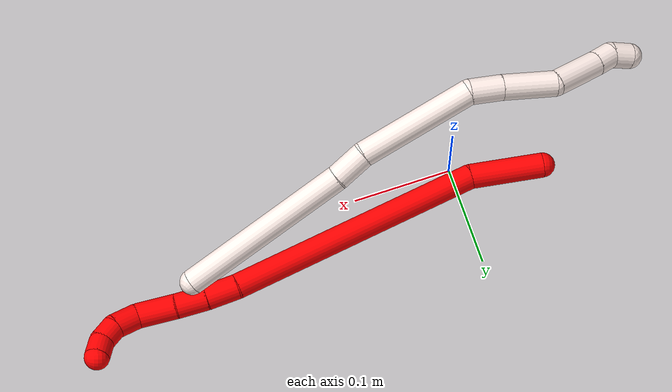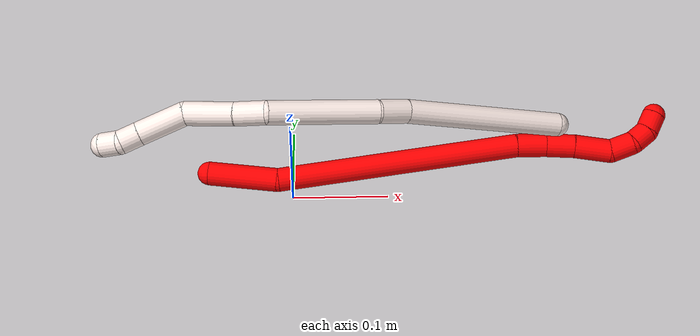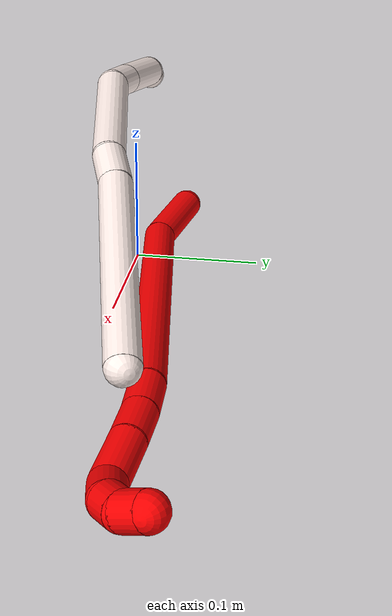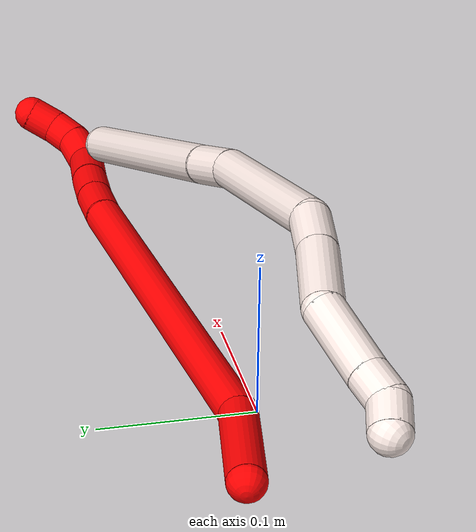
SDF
<sdf version="1.7">
 <world name="default">
  <model name="photoneo_s_sensor">
   <static>1</static>
   <pose>0 0 2 1.57079 1.57079 3.14159</pose>
   <link name="link">
    <inertial><mass>0.1</mass></inertial>
    <sensor name="sensor" type="depth">
     <update_rate>30</update_rate>
     <camera>
      <horizontal_fov>1.22</horizontal_fov>
      <image><width>1920</width><height>1200</height><format>B8G8R8</format></image>
      <clip><near>0.1</near><far>4</far></clip>
      <depth_camera><output>points</output></depth_camera>
     </camera>
     <plugin name="camera_plugin" filename="libgazebo_ros_depth_camera.so">
      <baseline>0.2</baseline>
      <alwaysOn>1</alwaysOn>
      <updateRate>0.0</updateRate>
      <cameraName>camera_ir</cameraName>
      <imageTopicName>/camera/color/image_raw</imageTopicName>
      <cameraInfoTopicName>/camera/color/camera_info</cameraInfoTopicName>
      <depthImageTopicName>/camera/depth/image_raw</depthImageTopicName>
      <depthImageCameraInfoTopicName>/camera/depth/camera_info</depthImageCameraInfoTopicName>
      <pointCloudTopicName>/camera/depth/points</pointCloudTopicName>
      <frameName>fr_optical</frameName>
      <pointCloudCutoff>0.1</pointCloudCutoff>
      <pointCloudCutoffMax>2.0</pointCloudCutoffMax>
      <distortionK1>0</distortionK1>
      <distortionK2>0</distortionK2>
      <distortionK3>0</distortionK3>
      <distortionT1>0</distortionT1>
      <distortionT2>0</distortionT2>
      <CxPrime>0</CxPrime>
      <Cx>0</Cx>
      <Cy>0</Cy>
      <focalLength>0</focalLength>
      <hackBaseline>0</hackBaseline>
     </plugin>
    </sensor>
   </link>
  </model>
  <model name="bin">
   <static>1</static>
   <link name="bottom">
    <collision name="collision-bottom">
     <pose>0 0 -0.01 0 -0 0</pose>
     <geometry><box><size>0.8 0.6 0.02</size></box></geometry>
     <surface>
      <friction><ode><mu>100</mu><mu2>100</mu2></ode></friction>
      <contact><collide_bitmask>65535</collide_bitmask></contact>
     </surface>
    </collision>
   </link>
   <link name="west_wall">
    <collision name="collision-west_wall">
     <pose>-0.41 0 0.1 0 -0 0</pose>
     <geometry><box><size>0.02 0.6 0.2</size></box></geometry>
     <surface>
      <friction><ode><mu>100</mu><mu2>100</mu2></ode></friction>
      <contact><collide_bitmask>65535</collide_bitmask></contact>
     </surface>
    </collision>
   </link>
   <link name="east_wall">
    <collision name="collision-east_wall">
     <pose>0.41 0 0.1 0 -0 0</pose>
     <geometry><box><size>0.02 0.6 0.2</size></box></geometry>
     <surface>
      <friction><ode><mu>100</mu><mu2>100</mu2></ode></friction>
      <contact><collide_bitmask>65535</collide_bitmask></contact>
     </surface>
    </collision>
   </link>
   <link name="south_wall">
    <collision name="collision-south_wall">
     <pose>0 -0.31 0.1 0 -0 0</pose>
     <geometry><box><size>0.8 0.02 0.2</size></box></geometry>
     <surface>
      <friction><ode><mu>100</mu><mu2>100</mu2></ode></friction>
      <contact><collide_bitmask>65535</collide_bitmask></contact>
     </surface>
    </collision>
   </link>
   <link name="north_wall">
    <collision name="collision-north_wall">
     <pose>0 0.31 0.1 0 -0 0</pose>
     <geometry><box><size>0.8 0.02 0.2</size></box></geometry>
     <surface>
      <friction><ode><mu>100</mu><mu2>100</mu2></ode></friction>
      <contact><collide_bitmask>65535</collide_bitmask></contact>
     </surface>
    </collision>
   </link>
  </model>
  <model name="2">
   <static>0</static>
   <link name="2">
    <collision name="collision-cylinder-e_1_1_4">
     <pose>0.006479 -0.003696 0.036149 0.101897 0.176455 0.009021</pose>
     <geometry><cylinder><radius>0.0125</radius><length>0.073822</length></cylinder></geometry>
     <surface>
      <friction><ode><mu>1.16</mu><mu2>1.16</mu2><slip1>0</slip1><slip2>0</slip2></ode></friction>
      <contact><ode><kp>1e+06</kp><kd>1</kd><max_vel>0</max_vel><min_depth>0.001</min_depth></ode></contact>
     </surface>
    </collision>
    <visual name="visual-cylinder-e_1_1_4">
     <pose>0.006479 -0.003696 0.036149 0.101897 0.176455 0.009021</pose>
     <geometry><cylinder><radius>0.0125</radius><length>0.073822</length></cylinder></geometry>
     <material><ambient>1 0 0 1</ambient></material>
    </visual>
    <collision name="collision-cylinder-e_2_4_5">
     <pose>0.058811 0.011089 0.191696 -0.153572 0.362715 -0.028215</pose>
     <geometry><cylinder><radius>0.0125</radius><length>0.258455</length></cylinder></geometry>
     <surface>
      <friction><ode><mu>1.16</mu><mu2>1.16</mu2><slip1>0</slip1><slip2>0</slip2></ode></friction>
      <contact><ode><kp>1e+06</kp><kd>1</kd><max_vel>0</max_vel><min_depth>0.001</min_depth></ode></contact>
     </surface>
    </collision>
    <visual name="visual-cylinder-e_2_4_5">
     <pose>0.058811 0.011089 0.191696 -0.153572 0.362715 -0.028215</pose>
     <geometry><cylinder><radius>0.0125</radius><length>0.258455</length></cylinder></geometry>
     <material><ambient>1 0 0 1</ambient></material>
    </visual>
    <collision name="collision-cylinder-e_3_5_6">
     <pose>0.109859 0.029773 0.326049 -0.013501 0.334408 -0.002279</pose>
     <geometry><cylinder><radius>0.0125</radius><length>0.031666</length></cylinder></geometry>
     <surface>
      <friction><ode><mu>1.16</mu><mu2>1.16</mu2><slip1>0</slip1><slip2>0</slip2></ode></friction>
      <contact><ode><kp>1e+06</kp><kd>1</kd><max_vel>0</max_vel><min_depth>0.001</min_depth></ode></contact>
     </surface>
    </collision>
    <visual name="visual-cylinder-e_3_5_6">
     <pose>0.109859 0.029773 0.326049 -0.013501 0.334408 -0.002279</pose>
     <geometry><cylinder><radius>0.0125</radius><length>0.031666</length></cylinder></geometry>
     <material><ambient>1 0 0 1</ambient></material>
    </visual>
    <collision name="collision-cylinder-e_4_6_7">
     <pose>0.11927 0.029345 0.355674 0.042872 0.279481 0.006031</pose>
     <geometry><cylinder><radius>0.0125</radius><length>0.030554</length></cylinder></geometry>
     <surface>
      <friction><ode><mu>1.16</mu><mu2>1.16</mu2><slip1>0</slip1><slip2>0</slip2></ode></friction>
      <contact><ode><kp>1e+06</kp><kd>1</kd><max_vel>0</max_vel><min_depth>0.001</min_depth></ode></contact>
     </surface>
    </collision>
    <visual name="visual-cylinder-e_4_6_7">
     <pose>0.11927 0.029345 0.355674 0.042872 0.279481 0.006031</pose>
     <geometry><cylinder><radius>0.0125</radius><length>0.030554</length></cylinder></geometry>
     <material><ambient>1 0 0 1</ambient></material>
    </visual>
    <collision name="collision-cylinder-e_5_7_8">
     <pose>0.129103 0.026072 0.389046 0.140449 0.289185 0.020483</pose>
     <geometry><cylinder><radius>0.0125</radius><length>0.039412</length></cylinder></geometry>
     <surface>
      <friction><ode><mu>1.16</mu><mu2>1.16</mu2><slip1>0</slip1><slip2>0</slip2></ode></friction>
      <contact><ode><kp>1e+06</kp><kd>1</kd><max_vel>0</max_vel><min_depth>0.001</min_depth></ode></contact>
     </surface>
    </collision>
    <visual name="visual-cylinder-e_5_7_8">
     <pose>0.129103 0.026072 0.389046 0.140449 0.289185 0.020483</pose>
     <geometry><cylinder><radius>0.0125</radius><length>0.039412</length></cylinder></geometry>
     <material><ambient>1 0 0 1</ambient></material>
    </visual>
    <collision name="collision-cylinder-e_6_8_9">
     <pose>0.137598 0.027925 0.419416 -0.367852 0.225977 -0.042212</pose>
     <geometry><cylinder><radius>0.0125</radius><length>0.025663</length></cylinder></geometry>
     <surface>
      <friction><ode><mu>1.16</mu><mu2>1.16</mu2><slip1>0</slip1><slip2>0</slip2></ode></friction>
      <contact><ode><kp>1e+06</kp><kd>1</kd><max_vel>0</max_vel><min_depth>0.001</min_depth></ode></contact>
     </surface>
    </collision>
    <visual name="visual-cylinder-e_6_8_9">
     <pose>0.137598 0.027925 0.419416 -0.367852 0.225977 -0.042212</pose>
     <geometry><cylinder><radius>0.0125</radius><length>0.025663</length></cylinder></geometry>
     <material><ambient>1 0 0 1</ambient></material>
    </visual>
    <collision name="collision-cylinder-e_7_9_10">
     <pose>0.1448 0.038494 0.437759 -0.738174 0.447193 -0.17547</pose>
     <geometry><cylinder><radius>0.0125</radius><length>0.020014</length></cylinder></geometry>
     <surface>
      <friction><ode><mu>1.16</mu><mu2>1.16</mu2><slip1>0</slip1><slip2>0</slip2></ode></friction>
      <contact><ode><kp>1e+06</kp><kd>1</kd><max_vel>0</max_vel><min_depth>0.001</min_depth></ode></contact>
     </surface>
    </collision>
    <visual name="visual-cylinder-e_7_9_10">
     <pose>0.1448 0.038494 0.437759 -0.738174 0.447193 -0.17547</pose>
     <geometry><cylinder><radius>0.0125</radius><length>0.020014</length></cylinder></geometry>
     <material><ambient>1 0 0 1</ambient></material>
    </visual>
    <collision name="collision-cylinder-e_8_10_2">
     <pose>0.152967 0.05344 0.447704 -1.21773 0.38562 -0.270586</pose>
     <geometry><cylinder><radius>0.0125</radius><length>0.020414</length></cylinder></geometry>
     <surface>
      <friction><ode><mu>1.16</mu><mu2>1.16</mu2><slip1>0</slip1><slip2>0</slip2></ode></friction>
      <contact><ode><kp>1e+06</kp><kd>1</kd><max_vel>0</max_vel><min_depth>0.001</min_depth></ode></contact>
     </surface>
    </collision>
    <visual name="visual-cylinder-e_8_10_2">
     <pose>0.152967 0.05344 0.447704 -1.21773 0.38562 -0.270586</pose>
     <geometry><cylinder><radius>0.0125</radius><length>0.020414</length></cylinder></geometry>
     <material><ambient>1 0 0 1</ambient></material>
    </visual>
    <collision name="collision-sphere-2">
     <pose>0.156806 0.062314 0.450974 0 -0 0</pose>
     <geometry><sphere><radius>0.0125</radius></sphere></geometry>
     <surface>
      <friction><ode><mu>1.16</mu><mu2>1.16</mu2><slip1>0</slip1><slip2>0</slip2></ode></friction>
      <contact><ode><kp>1e+06</kp><kd>1</kd><max_vel>0</max_vel><min_depth>0.001</min_depth></ode></contact>
     </surface>
    </collision>
    <visual name="visual-sphere-2">
     <pose>0.156806 0.062314 0.450974 0 -0 0</pose>
     <geometry><sphere><radius>0.0125</radius></sphere></geometry>
     <material><ambient>1 0 0 1</ambient></material>
    </visual>
    <collision name="collision-sphere-10">
     <pose>0.149128 0.044566 0.444434 0 -0 0</pose>
     <geometry><sphere><radius>0.0125</radius></sphere></geometry>
     <surface>
      <friction><ode><mu>1.16</mu><mu2>1.16</mu2><slip1>0</slip1><slip2>0</slip2></ode></friction>
      <contact><ode><kp>1e+06</kp><kd>1</kd><max_vel>0</max_vel><min_depth>0.001</min_depth></ode></contact>
     </surface>
    </collision>
    <visual name="visual-sphere-10">
     <pose>0.149128 0.044566 0.444434 0 -0 0</pose>
     <geometry><sphere><radius>0.0125</radius></sphere></geometry>
     <material><ambient>1 0 0 1</ambient></material>
    </visual>
    <collision name="collision-sphere-9">
     <pose>0.140473 0.032422 0.431085 0 -0 0</pose>
     <geometry><sphere><radius>0.0125</radius></sphere></geometry>
     <surface>
      <friction><ode><mu>1.16</mu><mu2>1.16</mu2><slip1>0</slip1><slip2>0</slip2></ode></friction>
      <contact><ode><kp>1e+06</kp><kd>1</kd><max_vel>0</max_vel><min_depth>0.001</min_depth></ode></contact>
     </surface>
    </collision>
    <visual name="visual-sphere-9">
     <pose>0.140473 0.032422 0.431085 0 -0 0</pose>
     <geometry><sphere><radius>0.0125</radius></sphere></geometry>
     <material><ambient>1 0 0 1</ambient></material>
    </visual>
    <collision name="collision-sphere-4">
     <pose>0.012959 -0.007393 0.072299 0 -0 0</pose>
     <geometry><sphere><radius>0.0125</radius></sphere></geometry>
     <surface>
      <friction><ode><mu>1.16</mu><mu2>1.16</mu2><slip1>0</slip1><slip2>0</slip2></ode></friction>
      <contact><ode><kp>1e+06</kp><kd>1</kd><max_vel>0</max_vel><min_depth>0.001</min_depth></ode></contact>
     </surface>
    </collision>
    <visual name="visual-sphere-4">
     <pose>0.012959 -0.007393 0.072299 0 -0 0</pose>
     <geometry><sphere><radius>0.0125</radius></sphere></geometry>
     <material><ambient>1 0 0 1</ambient></material>
    </visual>
    <collision name="collision-sphere-1">
     <geometry><sphere><radius>0.0125</radius></sphere></geometry>
     <surface>
      <friction><ode><mu>1.16</mu><mu2>1.16</mu2><slip1>0</slip1><slip2>0</slip2></ode></friction>
      <contact><ode><kp>1e+06</kp><kd>1</kd><max_vel>0</max_vel><min_depth>0.001</min_depth></ode></contact>
     </surface>
    </collision>
    <visual name="visual-sphere-1">
     <geometry><sphere><radius>0.0125</radius></sphere></geometry>
     <material><ambient>1 0 0 1</ambient></material>
    </visual>
    <collision name="collision-sphere-8">
     <pose>0.134723 0.023428 0.407748 0 -0 0</pose>
     <geometry><sphere><radius>0.0125</radius></sphere></geometry>
     <surface>
      <friction><ode><mu>1.16</mu><mu2>1.16</mu2><slip1>0</slip1><slip2>0</slip2></ode></friction>
      <contact><ode><kp>1e+06</kp><kd>1</kd><max_vel>0</max_vel><min_depth>0.001</min_depth></ode></contact>
     </surface>
    </collision>
    <visual name="visual-sphere-8">
     <pose>0.134723 0.023428 0.407748 0 -0 0</pose>
     <geometry><sphere><radius>0.0125</radius></sphere></geometry>
     <material><ambient>1 0 0 1</ambient></material>
    </visual>
    <collision name="collision-sphere-5">
     <pose>0.104662 0.029571 0.311094 0 -0 0</pose>
     <geometry><sphere><radius>0.0125</radius></sphere></geometry>
     <surface>
      <friction><ode><mu>1.16</mu><mu2>1.16</mu2><slip1>0</slip1><slip2>0</slip2></ode></friction>
      <contact><ode><kp>1e+06</kp><kd>1</kd><max_vel>0</max_vel><min_depth>0.001</min_depth></ode></contact>
     </surface>
    </collision>
    <visual name="visual-sphere-5">
     <pose>0.104662 0.029571 0.311094 0 -0 0</pose>
     <geometry><sphere><radius>0.0125</radius></sphere></geometry>
     <material><ambient>1 0 0 1</ambient></material>
    </visual>
    <collision name="collision-sphere-6">
     <pose>0.115055 0.029975 0.341003 0 -0 0</pose>
     <geometry><sphere><radius>0.0125</radius></sphere></geometry>
     <surface>
      <friction><ode><mu>1.16</mu><mu2>1.16</mu2><slip1>0</slip1><slip2>0</slip2></ode></friction>
      <contact><ode><kp>1e+06</kp><kd>1</kd><max_vel>0</max_vel><min_depth>0.001</min_depth></ode></contact>
     </surface>
    </collision>
    <visual name="visual-sphere-6">
     <pose>0.115055 0.029975 0.341003 0 -0 0</pose>
     <geometry><sphere><radius>0.0125</radius></sphere></geometry>
     <material><ambient>1 0 0 1</ambient></material>
    </visual>
    <collision name="collision-sphere-7">
     <pose>0.123484 0.028716 0.370344 0 -0 0</pose>
     <geometry><sphere><radius>0.0125</radius></sphere></geometry>
     <surface>
      <friction><ode><mu>1.16</mu><mu2>1.16</mu2><slip1>0</slip1><slip2>0</slip2></ode></friction>
      <contact><ode><kp>1e+06</kp><kd>1</kd><max_vel>0</max_vel><min_depth>0.001</min_depth></ode></contact>
     </surface>
    </collision>
    <visual name="visual-sphere-7">
     <pose>0.123484 0.028716 0.370344 0 -0 0</pose>
     <geometry><sphere><radius>0.0125</radius></sphere></geometry>
     <material><ambient>1 0 0 1</ambient></material>
    </visual>
    <inertial>
     <pose>0.074883 0.016076 0.234805 0 -0 0</pose>
     <mass>0.5</mass>
     <inertia>
      <ixx>0.001382</ixx>
      <ixy>0</ixy>
      <ixz>0</ixz>
      <iyy>0.001454</iyy>
      <iyz>0</iyz>
      <izz>-0.000697</izz>
     </inertia>
    </inertial>
   </link>
   <pose>-0.089229 0.027489 0.011499 1.30294 0.748193 1.17044</pose>
  </model>
  <model name="11">
   <static>0</static>
   <link name="11">
    <collision name="collision-cylinder-e_1_1_4">
     <pose>-0.0413 -0.016457 0.074586 0.217163 -0.495687 -0.055155</pose>
     <geometry><cylinder><radius>0.0125</radius><length>0.173661</length></cylinder></geometry>
     <surface>
      <friction><ode><mu>1.16</mu><mu2>1.16</mu2><slip1>0</slip1><slip2>0</slip2></ode></friction>
      <contact><ode><kp>1e+06</kp><kd>1</kd><max_vel>0</max_vel><min_depth>0.001</min_depth></ode></contact>
     </surface>
    </collision>
    <visual name="visual-cylinder-e_1_1_4">
     <pose>-0.0413 -0.016457 0.074586 0.217163 -0.495687 -0.055155</pose>
     <geometry><cylinder><radius>0.0125</radius><length>0.173661</length></cylinder></geometry>
     <material><ambient>1 0.933333 0.909804 1</ambient></material>
    </visual>
    <collision name="collision-cylinder-e_2_4_5">
     <pose>-0.089661 -0.034284 0.163907 0.092741 -0.445202 -0.021006</pose>
     <geometry><cylinder><radius>0.0125</radius><length>0.032795</length></cylinder></geometry>
     <surface>
      <friction><ode><mu>1.16</mu><mu2>1.16</mu2><slip1>0</slip1><slip2>0</slip2></ode></friction>
      <contact><ode><kp>1e+06</kp><kd>1</kd><max_vel>0</max_vel><min_depth>0.001</min_depth></ode></contact>
     </surface>
    </collision>
    <visual name="visual-cylinder-e_2_4_5">
     <pose>-0.089661 -0.034284 0.163907 0.092741 -0.445202 -0.021006</pose>
     <geometry><cylinder><radius>0.0125</radius><length>0.032795</length></cylinder></geometry>
     <material><ambient>1 0.933333 0.909804 1</ambient></material>
    </visual>
    <collision name="collision-cylinder-e_3_5_6">
     <pose>-0.116639 -0.051807 0.230791 0.300357 -0.349818 -0.053467</pose>
     <geometry><cylinder><radius>0.0125</radius><length>0.116225</length></cylinder></geometry>
     <surface>
      <friction><ode><mu>1.16</mu><mu2>1.16</mu2><slip1>0</slip1><slip2>0</slip2></ode></friction>
      <contact><ode><kp>1e+06</kp><kd>1</kd><max_vel>0</max_vel><min_depth>0.001</min_depth></ode></contact>
     </surface>
    </collision>
    <visual name="visual-cylinder-e_3_5_6">
     <pose>-0.116639 -0.051807 0.230791 0.300357 -0.349818 -0.053467</pose>
     <geometry><cylinder><radius>0.0125</radius><length>0.116225</length></cylinder></geometry>
     <material><ambient>1 0.933333 0.909804 1</ambient></material>
    </visual>
    <collision name="collision-cylinder-e_4_6_7">
     <pose>-0.138006 -0.077842 0.295765 0.656578 -0.089372 -0.030459</pose>
     <geometry><cylinder><radius>0.0125</radius><length>0.032513</length></cylinder></geometry>
     <surface>
      <friction><ode><mu>1.16</mu><mu2>1.16</mu2><slip1>0</slip1><slip2>0</slip2></ode></friction>
      <contact><ode><kp>1e+06</kp><kd>1</kd><max_vel>0</max_vel><min_depth>0.001</min_depth></ode></contact>
     </surface>
    </collision>
    <visual name="visual-cylinder-e_4_6_7">
     <pose>-0.138006 -0.077842 0.295765 0.656578 -0.089372 -0.030459</pose>
     <geometry><cylinder><radius>0.0125</radius><length>0.032513</length></cylinder></geometry>
     <material><ambient>1 0.933333 0.909804 1</ambient></material>
    </visual>
    <collision name="collision-cylinder-e_5_7_8">
     <pose>-0.142142 -0.105145 0.328222 0.725742 -0.101952 -0.038738</pose>
     <geometry><cylinder><radius>0.0125</radius><length>0.052767</length></cylinder></geometry>
     <surface>
      <friction><ode><mu>1.16</mu><mu2>1.16</mu2><slip1>0</slip1><slip2>0</slip2></ode></friction>
      <contact><ode><kp>1e+06</kp><kd>1</kd><max_vel>0</max_vel><min_depth>0.001</min_depth></ode></contact>
     </surface>
    </collision>
    <visual name="visual-cylinder-e_5_7_8">
     <pose>-0.142142 -0.105145 0.328222 0.725742 -0.101952 -0.038738</pose>
     <geometry><cylinder><radius>0.0125</radius><length>0.052767</length></cylinder></geometry>
     <material><ambient>1 0.933333 0.909804 1</ambient></material>
    </visual>
    <collision name="collision-cylinder-e_6_8_9">
     <pose>-0.141417 -0.130282 0.37178 0.312036 0.134851 0.021243</pose>
     <geometry><cylinder><radius>0.0125</radius><length>0.050739</length></cylinder></geometry>
     <surface>
      <friction><ode><mu>1.16</mu><mu2>1.16</mu2><slip1>0</slip1><slip2>0</slip2></ode></friction>
      <contact><ode><kp>1e+06</kp><kd>1</kd><max_vel>0</max_vel><min_depth>0.001</min_depth></ode></contact>
     </surface>
    </collision>
    <visual name="visual-cylinder-e_6_8_9">
     <pose>-0.141417 -0.130282 0.37178 0.312036 0.134851 0.021243</pose>
     <geometry><cylinder><radius>0.0125</radius><length>0.050739</length></cylinder></geometry>
     <material><ambient>1 0.933333 0.909804 1</ambient></material>
    </visual>
    <collision name="collision-cylinder-e_7_9_10">
     <pose>-0.136801 -0.140664 0.405619 0.262583 0.116863 0.015449</pose>
     <geometry><cylinder><radius>0.0125</radius><length>0.020673</length></cylinder></geometry>
     <surface>
      <friction><ode><mu>1.16</mu><mu2>1.16</mu2><slip1>0</slip1><slip2>0</slip2></ode></friction>
      <contact><ode><kp>1e+06</kp><kd>1</kd><max_vel>0</max_vel><min_depth>0.001</min_depth></ode></contact>
     </surface>
    </collision>
    <visual name="visual-cylinder-e_7_9_10">
     <pose>-0.136801 -0.140664 0.405619 0.262583 0.116863 0.015449</pose>
     <geometry><cylinder><radius>0.0125</radius><length>0.020673</length></cylinder></geometry>
     <material><ambient>1 0.933333 0.909804 1</ambient></material>
    </visual>
    <collision name="collision-cylinder-e_8_10_2">
     <pose>-0.134363 -0.15054 0.422804 0.78125 0.119843 0.049399</pose>
     <geometry><cylinder><radius>0.0125</radius><length>0.020629</length></cylinder></geometry>
     <surface>
      <friction><ode><mu>1.16</mu><mu2>1.16</mu2><slip1>0</slip1><slip2>0</slip2></ode></friction>
      <contact><ode><kp>1e+06</kp><kd>1</kd><max_vel>0</max_vel><min_depth>0.001</min_depth></ode></contact>
     </surface>
    </collision>
    <visual name="visual-cylinder-e_8_10_2">
     <pose>-0.134363 -0.15054 0.422804 0.78125 0.119843 0.049399</pose>
     <geometry><cylinder><radius>0.0125</radius><length>0.020629</length></cylinder></geometry>
     <material><ambient>1 0.933333 0.909804 1</ambient></material>
    </visual>
    <collision name="collision-sphere-2">
     <pose>-0.13313 -0.157751 0.430075 0 -0 0</pose>
     <geometry><sphere><radius>0.0125</radius></sphere></geometry>
     <surface>
      <friction><ode><mu>1.16</mu><mu2>1.16</mu2><slip1>0</slip1><slip2>0</slip2></ode></friction>
      <contact><ode><kp>1e+06</kp><kd>1</kd><max_vel>0</max_vel><min_depth>0.001</min_depth></ode></contact>
     </surface>
    </collision>
    <visual name="visual-sphere-2">
     <pose>-0.13313 -0.157751 0.430075 0 -0 0</pose>
     <geometry><sphere><radius>0.0125</radius></sphere></geometry>
     <material><ambient>1 0.933333 0.909804 1</ambient></material>
    </visual>
    <collision name="collision-sphere-10">
     <pose>-0.135596 -0.143329 0.415533 0 -0 0</pose>
     <geometry><sphere><radius>0.0125</radius></sphere></geometry>
     <surface>
      <friction><ode><mu>1.16</mu><mu2>1.16</mu2><slip1>0</slip1><slip2>0</slip2></ode></friction>
      <contact><ode><kp>1e+06</kp><kd>1</kd><max_vel>0</max_vel><min_depth>0.001</min_depth></ode></contact>
     </surface>
    </collision>
    <visual name="visual-sphere-10">
     <pose>-0.135596 -0.143329 0.415533 0 -0 0</pose>
     <geometry><sphere><radius>0.0125</radius></sphere></geometry>
     <material><ambient>1 0.933333 0.909804 1</ambient></material>
    </visual>
    <collision name="collision-sphere-9">
     <pose>-0.138006 -0.137999 0.395705 0 -0 0</pose>
     <geometry><sphere><radius>0.0125</radius></sphere></geometry>
     <surface>
      <friction><ode><mu>1.16</mu><mu2>1.16</mu2><slip1>0</slip1><slip2>0</slip2></ode></friction>
      <contact><ode><kp>1e+06</kp><kd>1</kd><max_vel>0</max_vel><min_depth>0.001</min_depth></ode></contact>
     </surface>
    </collision>
    <visual name="visual-sphere-9">
     <pose>-0.138006 -0.137999 0.395705 0 -0 0</pose>
     <geometry><sphere><radius>0.0125</radius></sphere></geometry>
     <material><ambient>1 0.933333 0.909804 1</ambient></material>
    </visual>
    <collision name="collision-sphere-4">
     <pose>-0.082599 -0.032914 0.149172 0 -0 0</pose>
     <geometry><sphere><radius>0.0125</radius></sphere></geometry>
     <surface>
      <friction><ode><mu>1.16</mu><mu2>1.16</mu2><slip1>0</slip1><slip2>0</slip2></ode></friction>
      <contact><ode><kp>1e+06</kp><kd>1</kd><max_vel>0</max_vel><min_depth>0.001</min_depth></ode></contact>
     </surface>
    </collision>
    <visual name="visual-sphere-4">
     <pose>-0.082599 -0.032914 0.149172 0 -0 0</pose>
     <geometry><sphere><radius>0.0125</radius></sphere></geometry>
     <material><ambient>1 0.933333 0.909804 1</ambient></material>
    </visual>
    <collision name="collision-sphere-1">
     <geometry><sphere><radius>0.0125</radius></sphere></geometry>
     <surface>
      <friction><ode><mu>1.16</mu><mu2>1.16</mu2><slip1>0</slip1><slip2>0</slip2></ode></friction>
      <contact><ode><kp>1e+06</kp><kd>1</kd><max_vel>0</max_vel><min_depth>0.001</min_depth></ode></contact>
     </surface>
    </collision>
    <visual name="visual-sphere-1">
     <geometry><sphere><radius>0.0125</radius></sphere></geometry>
     <material><ambient>1 0.933333 0.909804 1</ambient></material>
    </visual>
    <collision name="collision-sphere-8">
     <pose>-0.144828 -0.122564 0.347855 0 -0 0</pose>
     <geometry><sphere><radius>0.0125</radius></sphere></geometry>
     <surface>
      <friction><ode><mu>1.16</mu><mu2>1.16</mu2><slip1>0</slip1><slip2>0</slip2></ode></friction>
      <contact><ode><kp>1e+06</kp><kd>1</kd><max_vel>0</max_vel><min_depth>0.001</min_depth></ode></contact>
     </surface>
    </collision>
    <visual name="visual-sphere-8">
     <pose>-0.144828 -0.122564 0.347855 0 -0 0</pose>
     <geometry><sphere><radius>0.0125</radius></sphere></geometry>
     <material><ambient>1 0.933333 0.909804 1</ambient></material>
    </visual>
    <collision name="collision-sphere-5">
     <pose>-0.096722 -0.035655 0.178643 0 -0 0</pose>
     <geometry><sphere><radius>0.0125</radius></sphere></geometry>
     <surface>
      <friction><ode><mu>1.16</mu><mu2>1.16</mu2><slip1>0</slip1><slip2>0</slip2></ode></friction>
      <contact><ode><kp>1e+06</kp><kd>1</kd><max_vel>0</max_vel><min_depth>0.001</min_depth></ode></contact>
     </surface>
    </collision>
    <visual name="visual-sphere-5">
     <pose>-0.096722 -0.035655 0.178643 0 -0 0</pose>
     <geometry><sphere><radius>0.0125</radius></sphere></geometry>
     <material><ambient>1 0.933333 0.909804 1</ambient></material>
    </visual>
    <collision name="collision-sphere-6">
     <pose>-0.136555 -0.067958 0.28294 0 -0 0</pose>
     <geometry><sphere><radius>0.0125</radius></sphere></geometry>
     <surface>
      <friction><ode><mu>1.16</mu><mu2>1.16</mu2><slip1>0</slip1><slip2>0</slip2></ode></friction>
      <contact><ode><kp>1e+06</kp><kd>1</kd><max_vel>0</max_vel><min_depth>0.001</min_depth></ode></contact>
     </surface>
    </collision>
    <visual name="visual-sphere-6">
     <pose>-0.136555 -0.067958 0.28294 0 -0 0</pose>
     <geometry><sphere><radius>0.0125</radius></sphere></geometry>
     <material><ambient>1 0.933333 0.909804 1</ambient></material>
    </visual>
    <collision name="collision-sphere-7">
     <pose>-0.139457 -0.087725 0.30859 0 -0 0</pose>
     <geometry><sphere><radius>0.0125</radius></sphere></geometry>
     <surface>
      <friction><ode><mu>1.16</mu><mu2>1.16</mu2><slip1>0</slip1><slip2>0</slip2></ode></friction>
      <contact><ode><kp>1e+06</kp><kd>1</kd><max_vel>0</max_vel><min_depth>0.001</min_depth></ode></contact>
     </surface>
    </collision>
    <visual name="visual-sphere-7">
     <pose>-0.139457 -0.087725 0.30859 0 -0 0</pose>
     <geometry><sphere><radius>0.0125</radius></sphere></geometry>
     <material><ambient>1 0.933333 0.909804 1</ambient></material>
    </visual>
    <inertial>
     <pose>-0.096863 -0.061412 0.216115 0 -0 0</pose>
     <mass>0.5</mass>
     <inertia>
      <ixx>0.000515</ixx>
      <ixy>0</ixy>
      <ixz>0</ixz>
      <iyy>0.000557</iyy>
      <iyz>0</iyz>
      <izz>0.000432</izz>
     </inertia>
    </inertial>
   </link>
   <pose>0.279699 0.04647 0.057313 2.04459 1.3147 -0.56479</pose>
  </model>
 </world>
</sdf>
